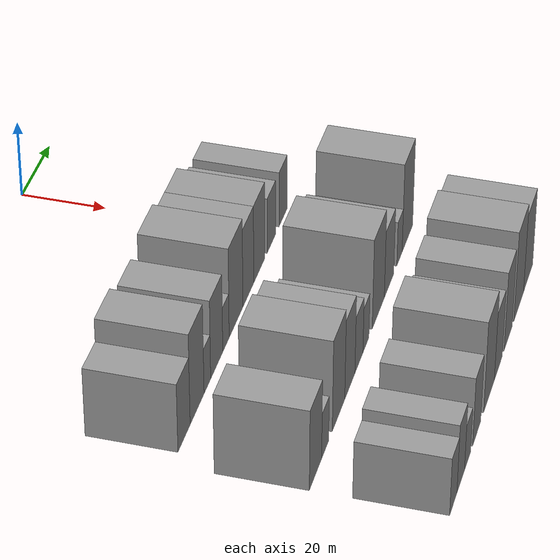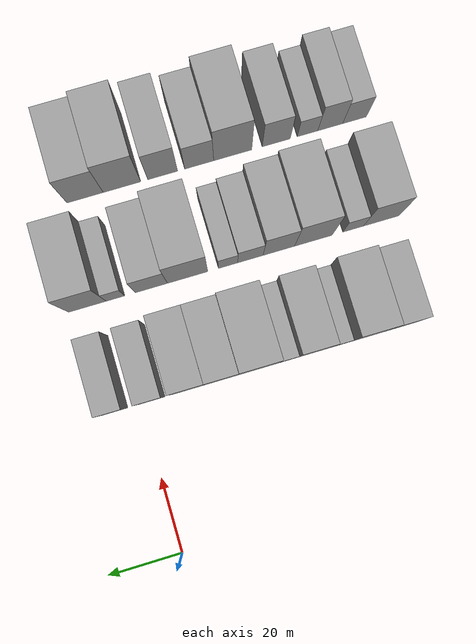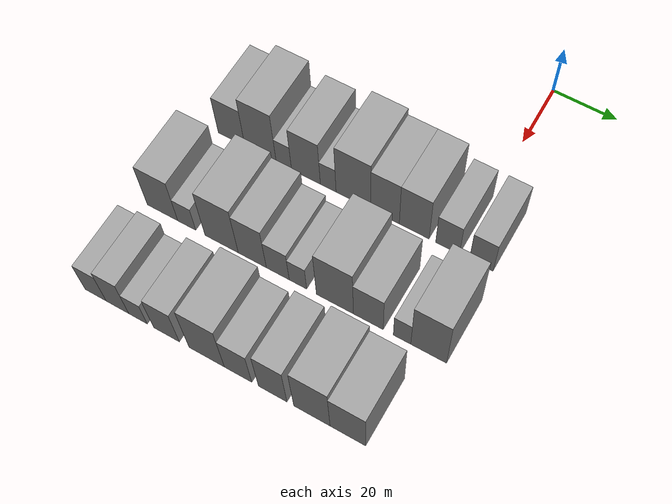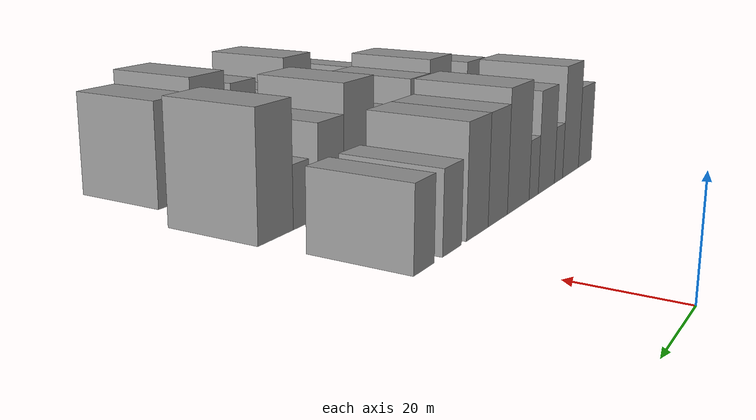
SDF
<sdf version="1.6">
 <world name="default">
  <model name="building_30">
   <static>1</static>
   <pose>50.0000 -72.2557 0 0.000000 0.000000 0.000000</pose>
   <link name="link">
    <pose>0 0 9.00 0 0 0</pose>
    <collision name="collision"><geometry><box><size>20.0000 8.9259 18.0000</size></box></geometry></collision>
    <visual name="visual">
     <cast_shadows>0</cast_shadows>
     <geometry><box><size>20.0000 8.9259 18.0000</size></box></geometry>
     <material>
      <script>
       <uri>model://grey_wall/materials/scripts</uri>
       <uri>model://grey_wall/materials/textures</uri>
       <name>vrc/grey_wall</name>
      </script>
     </material>
    </visual>
   </link>
  </model>
  <model name="building_31">
   <static>1</static>
   <pose>50.0000 -62.6025 0 0.000000 0.000000 0.000000</pose>
   <link name="link">
    <pose>0 0 12.00 0 0 0</pose>
    <collision name="collision"><geometry><box><size>20.0000 10.3805 24.0000</size></box></geometry></collision>
    <visual name="visual">
     <cast_shadows>0</cast_shadows>
     <geometry><box><size>20.0000 10.3805 24.0000</size></box></geometry>
     <material>
      <script>
       <uri>model://grey_wall/materials/scripts</uri>
       <uri>model://grey_wall/materials/textures</uri>
       <name>vrc/grey_wall</name>
      </script>
     </material>
    </visual>
   </link>
  </model>
  <model name="building_32">
   <static>1</static>
   <pose>50.0000 -54.8937 0 0.000000 0.000000 0.000000</pose>
   <link name="link">
    <pose>0 0 6.00 0 0 0</pose>
    <collision name="collision"><geometry><box><size>20.0000 5.0372 12.0000</size></box></geometry></collision>
    <visual name="visual">
     <cast_shadows>0</cast_shadows>
     <geometry><box><size>20.0000 5.0372 12.0000</size></box></geometry>
     <material>
      <script>
       <uri>model://grey_wall/materials/scripts</uri>
       <uri>model://grey_wall/materials/textures</uri>
       <name>vrc/grey_wall</name>
      </script>
     </material>
    </visual>
   </link>
  </model>
  <model name="building_33">
   <static>1</static>
   <pose>50.0000 -47.6970 0 0.000000 0.000000 0.000000</pose>
   <link name="link">
    <pose>0 0 10.50 0 0 0</pose>
    <collision name="collision"><geometry><box><size>20.0000 9.3563 21.0000</size></box></geometry></collision>
    <visual name="visual">
     <cast_shadows>0</cast_shadows>
     <geometry><box><size>20.0000 9.3563 21.0000</size></box></geometry>
     <material>
      <script>
       <uri>model://grey_wall/materials/scripts</uri>
       <uri>model://grey_wall/materials/textures</uri>
       <name>vrc/grey_wall</name>
      </script>
     </material>
    </visual>
   </link>
  </model>
  <model name="building_34">
   <static>1</static>
   <pose>50.0000 -40.5022 0 0.000000 0.000000 0.000000</pose>
   <link name="link">
    <pose>0 0 6.00 0 0 0</pose>
    <collision name="collision"><geometry><box><size>20.0000 5.0334 12.0000</size></box></geometry></collision>
    <visual name="visual">
     <cast_shadows>0</cast_shadows>
     <geometry><box><size>20.0000 5.0334 12.0000</size></box></geometry>
     <material>
      <script>
       <uri>model://grey_wall/materials/scripts</uri>
       <uri>model://grey_wall/materials/textures</uri>
       <name>vrc/grey_wall</name>
      </script>
     </material>
    </visual>
   </link>
  </model>
  <model name="building_35">
   <static>1</static>
   <pose>50.0000 -32.4761 0 0.000000 0.000000 0.000000</pose>
   <link name="link">
    <pose>0 0 12.00 0 0 0</pose>
    <collision name="collision"><geometry><box><size>20.0000 11.0187 24.0000</size></box></geometry></collision>
    <visual name="visual">
     <cast_shadows>0</cast_shadows>
     <geometry><box><size>20.0000 11.0187 24.0000</size></box></geometry>
     <material>
      <script>
       <uri>model://grey_wall/materials/scripts</uri>
       <uri>model://grey_wall/materials/textures</uri>
       <name>vrc/grey_wall</name>
      </script>
     </material>
    </visual>
   </link>
  </model>
  <model name="building_36">
   <static>1</static>
   <pose>50.0000 -22.5019 0 0.000000 0.000000 0.000000</pose>
   <link name="link">
    <pose>0 0 10.50 0 0 0</pose>
    <collision name="collision"><geometry><box><size>20.0000 8.9299 21.0000</size></box></geometry></collision>
    <visual name="visual">
     <cast_shadows>0</cast_shadows>
     <geometry><box><size>20.0000 8.9299 21.0000</size></box></geometry>
     <material>
      <script>
       <uri>model://grey_wall/materials/scripts</uri>
       <uri>model://grey_wall/materials/textures</uri>
       <name>vrc/grey_wall</name>
      </script>
     </material>
    </visual>
   </link>
  </model>
  <model name="building_37">
   <static>1</static>
   <pose>50.0000 -13.4229 0 0.000000 0.000000 0.000000</pose>
   <link name="link">
    <pose>0 0 10.50 0 0 0</pose>
    <collision name="collision"><geometry><box><size>20.0000 9.2280 21.0000</size></box></geometry></collision>
    <visual name="visual">
     <cast_shadows>0</cast_shadows>
     <geometry><box><size>20.0000 9.2280 21.0000</size></box></geometry>
     <material>
      <script>
       <uri>model://grey_wall/materials/scripts</uri>
       <uri>model://grey_wall/materials/textures</uri>
       <name>vrc/grey_wall</name>
      </script>
     </material>
    </visual>
   </link>
  </model>
  <model name="building_38">
   <static>1</static>
   <pose>50.0000 -3.1826 0 0.000000 0.000000 0.000000</pose>
   <link name="link">
    <pose>0 0 7.50 0 0 0</pose>
    <collision name="collision"><geometry><box><size>20.0000 7.2527 15.0000</size></box></geometry></collision>
    <visual name="visual">
     <cast_shadows>0</cast_shadows>
     <geometry><box><size>20.0000 7.2527 15.0000</size></box></geometry>
     <material>
      <script>
       <uri>model://grey_wall/materials/scripts</uri>
       <uri>model://grey_wall/materials/textures</uri>
       <name>vrc/grey_wall</name>
      </script>
     </material>
    </visual>
   </link>
  </model>
  <model name="building_39">
   <static>1</static>
   <pose>50.0000 7.0037 0 0.000000 0.000000 0.000000</pose>
   <link name="link">
    <pose>0 0 7.50 0 0 0</pose>
    <collision name="collision"><geometry><box><size>20.0000 7.1198 15.0000</size></box></geometry></collision>
    <visual name="visual">
     <cast_shadows>0</cast_shadows>
     <geometry><box><size>20.0000 7.1198 15.0000</size></box></geometry>
     <material>
      <script>
       <uri>model://grey_wall/materials/scripts</uri>
       <uri>model://grey_wall/materials/textures</uri>
       <name>vrc/grey_wall</name>
      </script>
     </material>
    </visual>
   </link>
  </model>
  <model name="building_106">
   <static>1</static>
   <pose>79.0000 -76.0798 0 0.000000 0.000000 0.000000</pose>
   <link name="link">
    <pose>0 0 10.50 0 0 0</pose>
    <collision name="collision"><geometry><box><size>20.0000 10.0414 21.0000</size></box></geometry></collision>
    <visual name="visual">
     <cast_shadows>0</cast_shadows>
     <geometry><box><size>20.0000 10.0414 21.0000</size></box></geometry>
     <material>
      <script>
       <uri>model://grey_wall/materials/scripts</uri>
       <uri>model://grey_wall/materials/textures</uri>
       <name>vrc/grey_wall</name>
      </script>
     </material>
    </visual>
   </link>
  </model>
  <model name="building_107">
   <static>1</static>
   <pose>79.0000 -68.1272 0 0.000000 0.000000 0.000000</pose>
   <link name="link">
    <pose>0 0 6.00 0 0 0</pose>
    <collision name="collision"><geometry><box><size>20.0000 5.8639 12.0000</size></box></geometry></collision>
    <visual name="visual">
     <cast_shadows>0</cast_shadows>
     <geometry><box><size>20.0000 5.8639 12.0000</size></box></geometry>
     <material>
      <script>
       <uri>model://grey_wall/materials/scripts</uri>
       <uri>model://grey_wall/materials/textures</uri>
       <name>vrc/grey_wall</name>
      </script>
     </material>
    </visual>
   </link>
  </model>
  <model name="building_108">
   <static>1</static>
   <pose>79.0000 -56.8489 0 0.000000 0.000000 0.000000</pose>
   <link name="link">
    <pose>0 0 12.00 0 0 0</pose>
    <collision name="collision"><geometry><box><size>20.0000 10.6927 24.0000</size></box></geometry></collision>
    <visual name="visual">
     <cast_shadows>0</cast_shadows>
     <geometry><box><size>20.0000 10.6927 24.0000</size></box></geometry>
     <material>
      <script>
       <uri>model://grey_wall/materials/scripts</uri>
       <uri>model://grey_wall/materials/textures</uri>
       <name>vrc/grey_wall</name>
      </script>
     </material>
    </visual>
   </link>
  </model>
  <model name="building_109">
   <static>1</static>
   <pose>79.0000 -47.0554 0 0.000000 0.000000 0.000000</pose>
   <link name="link">
    <pose>0 0 10.50 0 0 0</pose>
    <collision name="collision"><geometry><box><size>20.0000 8.8944 21.0000</size></box></geometry></collision>
    <visual name="visual">
     <cast_shadows>0</cast_shadows>
     <geometry><box><size>20.0000 8.8944 21.0000</size></box></geometry>
     <material>
      <script>
       <uri>model://grey_wall/materials/scripts</uri>
       <uri>model://grey_wall/materials/textures</uri>
       <name>vrc/grey_wall</name>
      </script>
     </material>
    </visual>
   </link>
  </model>
  <model name="building_110">
   <static>1</static>
   <pose>79.0000 -39.0380 0 0.000000 0.000000 0.000000</pose>
   <link name="link">
    <pose>0 0 7.50 0 0 0</pose>
    <collision name="collision"><geometry><box><size>20.0000 7.1403 15.0000</size></box></geometry></collision>
    <visual name="visual">
     <cast_shadows>0</cast_shadows>
     <geometry><box><size>20.0000 7.1403 15.0000</size></box></geometry>
     <material>
      <script>
       <uri>model://grey_wall/materials/scripts</uri>
       <uri>model://grey_wall/materials/textures</uri>
       <name>vrc/grey_wall</name>
      </script>
     </material>
    </visual>
   </link>
  </model>
  <model name="building_111">
   <static>1</static>
   <pose>79.0000 -32.7608 0 0.000000 0.000000 0.000000</pose>
   <link name="link">
    <pose>0 0 6.00 0 0 0</pose>
    <collision name="collision"><geometry><box><size>20.0000 5.4142 12.0000</size></box></geometry></collision>
    <visual name="visual">
     <cast_shadows>0</cast_shadows>
     <geometry><box><size>20.0000 5.4142 12.0000</size></box></geometry>
     <material>
      <script>
       <uri>model://grey_wall/materials/scripts</uri>
       <uri>model://grey_wall/materials/textures</uri>
       <name>vrc/grey_wall</name>
      </script>
     </material>
    </visual>
   </link>
  </model>
  <model name="building_112">
   <static>1</static>
   <pose>79.0000 -21.4126 0 0.000000 0.000000 0.000000</pose>
   <link name="link">
    <pose>0 0 12.00 0 0 0</pose>
    <collision name="collision"><geometry><box><size>20.0000 11.2821 24.0000</size></box></geometry></collision>
    <visual name="visual">
     <cast_shadows>0</cast_shadows>
     <geometry><box><size>20.0000 11.2821 24.0000</size></box></geometry>
     <material>
      <script>
       <uri>model://grey_wall/materials/scripts</uri>
       <uri>model://grey_wall/materials/textures</uri>
       <name>vrc/grey_wall</name>
      </script>
     </material>
    </visual>
   </link>
  </model>
  <model name="building_113">
   <static>1</static>
   <pose>79.0000 -11.2990 0 0.000000 0.000000 0.000000</pose>
   <link name="link">
    <pose>0 0 9.00 0 0 0</pose>
    <collision name="collision"><geometry><box><size>20.0000 8.9452 18.0000</size></box></geometry></collision>
    <visual name="visual">
     <cast_shadows>0</cast_shadows>
     <geometry><box><size>20.0000 8.9452 18.0000</size></box></geometry>
     <material>
      <script>
       <uri>model://grey_wall/materials/scripts</uri>
       <uri>model://grey_wall/materials/textures</uri>
       <name>vrc/grey_wall</name>
      </script>
     </material>
    </visual>
   </link>
  </model>
  <model name="building_114">
   <static>1</static>
   <pose>79.0000 -1.2502 0 0.000000 0.000000 0.000000</pose>
   <link name="link">
    <pose>0 0 6.00 0 0 0</pose>
    <collision name="collision"><geometry><box><size>20.0000 5.1523 12.0000</size></box></geometry></collision>
    <visual name="visual">
     <cast_shadows>0</cast_shadows>
     <geometry><box><size>20.0000 5.1523 12.0000</size></box></geometry>
     <material>
      <script>
       <uri>model://grey_wall/materials/scripts</uri>
       <uri>model://grey_wall/materials/textures</uri>
       <name>vrc/grey_wall</name>
      </script>
     </material>
    </visual>
   </link>
  </model>
  <model name="building_115">
   <static>1</static>
   <pose>79.0000 6.5574 0 0.000000 0.000000 0.000000</pose>
   <link name="link">
    <pose>0 0 12.00 0 0 0</pose>
    <collision name="collision"><geometry><box><size>20.0000 10.4629 24.0000</size></box></geometry></collision>
    <visual name="visual">
     <cast_shadows>0</cast_shadows>
     <geometry><box><size>20.0000 10.4629 24.0000</size></box></geometry>
     <material>
      <script>
       <uri>model://grey_wall/materials/scripts</uri>
       <uri>model://grey_wall/materials/textures</uri>
       <name>vrc/grey_wall</name>
      </script>
     </material>
    </visual>
   </link>
  </model>
  <model name="building_183">
   <static>1</static>
   <pose>108.0000 -77.6316 0 0.000000 0.000000 0.000000</pose>
   <link name="link">
    <pose>0 0 7.50 0 0 0</pose>
    <collision name="collision"><geometry><box><size>20.0000 6.8226 15.0000</size></box></geometry></collision>
    <visual name="visual">
     <cast_shadows>0</cast_shadows>
     <geometry><box><size>20.0000 6.8226 15.0000</size></box></geometry>
     <material>
      <script>
       <uri>model://grey_wall/materials/scripts</uri>
       <uri>model://grey_wall/materials/textures</uri>
       <name>vrc/grey_wall</name>
      </script>
     </material>
    </visual>
   </link>
  </model>
  <model name="building_184">
   <static>1</static>
   <pose>108.0000 -70.6138 0 0.000000 0.000000 0.000000</pose>
   <link name="link">
    <pose>0 0 9.00 0 0 0</pose>
    <collision name="collision"><geometry><box><size>20.0000 7.2130 18.0000</size></box></geometry></collision>
    <visual name="visual">
     <cast_shadows>0</cast_shadows>
     <geometry><box><size>20.0000 7.2130 18.0000</size></box></geometry>
     <material>
      <script>
       <uri>model://grey_wall/materials/scripts</uri>
       <uri>model://grey_wall/materials/textures</uri>
       <name>vrc/grey_wall</name>
      </script>
     </material>
    </visual>
   </link>
  </model>
  <model name="building_185">
   <static>1</static>
   <pose>108.0000 -64.0645 0 0.000000 0.000000 0.000000</pose>
   <link name="link">
    <pose>0 0 6.00 0 0 0</pose>
    <collision name="collision"><geometry><box><size>20.0000 5.8855 12.0000</size></box></geometry></collision>
    <visual name="visual">
     <cast_shadows>0</cast_shadows>
     <geometry><box><size>20.0000 5.8855 12.0000</size></box></geometry>
     <material>
      <script>
       <uri>model://grey_wall/materials/scripts</uri>
       <uri>model://grey_wall/materials/textures</uri>
       <name>vrc/grey_wall</name>
      </script>
     </material>
    </visual>
   </link>
  </model>
  <model name="building_186">
   <static>1</static>
   <pose>108.0000 -55.1009 0 0.000000 0.000000 0.000000</pose>
   <link name="link">
    <pose>0 0 9.00 0 0 0</pose>
    <collision name="collision"><geometry><box><size>20.0000 8.0418 18.0000</size></box></geometry></collision>
    <visual name="visual">
     <cast_shadows>0</cast_shadows>
     <geometry><box><size>20.0000 8.0418 18.0000</size></box></geometry>
     <material>
      <script>
       <uri>model://grey_wall/materials/scripts</uri>
       <uri>model://grey_wall/materials/textures</uri>
       <name>vrc/grey_wall</name>
      </script>
     </material>
    </visual>
   </link>
  </model>
  <model name="building_187">
   <static>1</static>
   <pose>108.0000 -42.6435 0 0.000000 0.000000 0.000000</pose>
   <link name="link">
    <pose>0 0 12.00 0 0 0</pose>
    <collision name="collision"><geometry><box><size>20.0000 10.8730 24.0000</size></box></geometry></collision>
    <visual name="visual">
     <cast_shadows>0</cast_shadows>
     <geometry><box><size>20.0000 10.8730 24.0000</size></box></geometry>
     <material>
      <script>
       <uri>model://grey_wall/materials/scripts</uri>
       <uri>model://grey_wall/materials/textures</uri>
       <name>vrc/grey_wall</name>
      </script>
     </material>
    </visual>
   </link>
  </model>
  <model name="building_188">
   <static>1</static>
   <pose>108.0000 -33.0684 0 0.000000 0.000000 0.000000</pose>
   <link name="link">
    <pose>0 0 9.00 0 0 0</pose>
    <collision name="collision"><geometry><box><size>20.0000 8.2771 18.0000</size></box></geometry></collision>
    <visual name="visual">
     <cast_shadows>0</cast_shadows>
     <geometry><box><size>20.0000 8.2771 18.0000</size></box></geometry>
     <material>
      <script>
       <uri>model://grey_wall/materials/scripts</uri>
       <uri>model://grey_wall/materials/textures</uri>
       <name>vrc/grey_wall</name>
      </script>
     </material>
    </visual>
   </link>
  </model>
  <model name="building_189">
   <static>1</static>
   <pose>108.0000 -22.6905 0 0.000000 0.000000 0.000000</pose>
   <link name="link">
    <pose>0 0 10.50 0 0 0</pose>
    <collision name="collision"><geometry><box><size>20.0000 8.4788 21.0000</size></box></geometry></collision>
    <visual name="visual">
     <cast_shadows>0</cast_shadows>
     <geometry><box><size>20.0000 8.4788 21.0000</size></box></geometry>
     <material>
      <script>
       <uri>model://grey_wall/materials/scripts</uri>
       <uri>model://grey_wall/materials/textures</uri>
       <name>vrc/grey_wall</name>
      </script>
     </material>
    </visual>
   </link>
  </model>
  <model name="building_190">
   <static>1</static>
   <pose>108.0000 -11.1431 0 0.000000 0.000000 0.000000</pose>
   <link name="link">
    <pose>0 0 12.00 0 0 0</pose>
    <collision name="collision"><geometry><box><size>20.0000 10.6160 24.0000</size></box></geometry></collision>
    <visual name="visual">
     <cast_shadows>0</cast_shadows>
     <geometry><box><size>20.0000 10.6160 24.0000</size></box></geometry>
     <material>
      <script>
       <uri>model://grey_wall/materials/scripts</uri>
       <uri>model://grey_wall/materials/textures</uri>
       <name>vrc/grey_wall</name>
      </script>
     </material>
    </visual>
   </link>
  </model>
  <model name="building_191">
   <static>1</static>
   <pose>108.0000 -0.7106 0 0.000000 0.000000 0.000000</pose>
   <link name="link">
    <pose>0 0 10.50 0 0 0</pose>
    <collision name="collision"><geometry><box><size>20.0000 10.2488 21.0000</size></box></geometry></collision>
    <visual name="visual">
     <cast_shadows>0</cast_shadows>
     <geometry><box><size>20.0000 10.2488 21.0000</size></box></geometry>
     <material>
      <script>
       <uri>model://grey_wall/materials/scripts</uri>
       <uri>model://grey_wall/materials/textures</uri>
       <name>vrc/grey_wall</name>
      </script>
     </material>
    </visual>
   </link>
  </model>
 </world>
</sdf>
